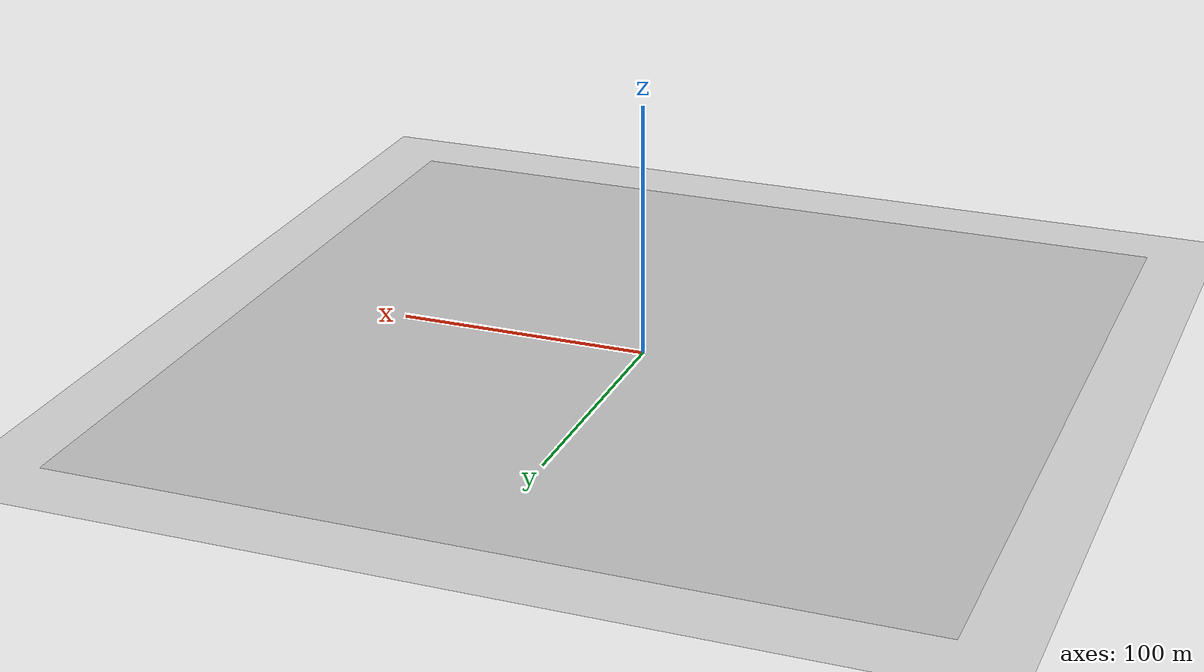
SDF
<?xml version="1.0" encoding="UTF-8"?>
<!-- ============================================================
     仿真世界描述文件 (SDF 1.9)
     场景：篮球场仿真环境
     ============================================================ -->
<sdf version="1.9">
  <world name="basketball_court">

    <!-- ========================================
         模块一：物理引擎配置
         控制仿真步长、实时性与更新频率。
         ======================================== -->
    <physics type="ode">
      <!-- 仿真步长 4ms，兼顾精度与性能 -->
      <max_step_size>0.004</max_step_size>
      <!-- 实时因子 1.0 表示仿真时间与真实时间同步 -->
      <real_time_factor>1.0</real_time_factor>
      <!-- 物理更新频率 250Hz（与步长互为倒数） -->
      <real_time_update_rate>250</real_time_update_rate>
    </physics>

    <!-- ========================================
         模块二：环境基础参数
         定义重力、地磁场及大气模型。
         ======================================== -->
    <!-- 重力加速度：Z 轴向下 9.8 m/s²（标准地球重力） -->
    <gravity>0 0 -9.8</gravity>
    <!-- 地磁场分量（单位：特斯拉），用于磁力计等传感器仿真 -->
    <magnetic_field>6e-06 2.3e-05 -4.2e-05</magnetic_field>
    <!-- 绝热大气模型，提供基础气压与密度环境 -->
    <atmosphere type="adiabatic"/>

    <!-- ========================================
         模块三：场景渲染参数
         控制可视化界面的网格、光照与阴影效果。
         ======================================== -->
    <scene>
      <!-- 关闭世界坐标系网格线显示 -->
      <grid>true</grid>
      <!-- 全局环境光强度（RGBA），柔和的白色漫射光 -->
      <ambient>0.4 0.4 0.4 1</ambient>
      <!-- 视口背景色：浅灰色 -->
      <background>0.7 0.7 0.7 1</background>
      <!-- 启用阴影渲染，增强场景真实感 -->
      <shadows>true</shadows>
    </scene>

    <!-- ========================================
         模块四：默认地面平面
         提供仿真世界的碰撞基准面。
         ======================================== -->
    <model name="ground_plane">
      <!-- 静态模型：不受外力影响，始终保持固定 -->
      <static>true</static>
      <link name="link">
        <!-- 碰撞体：无限延伸的平面，作为物理交互的基准 -->
        <collision name="collision">
          <geometry>
            <plane>
              <normal>0 0 1</normal>
              <size>1 1</size>
            </plane>
          </geometry>
          <surface>
            <friction>
              <ode/>
            </friction>
            <bounce/>
            <contact/>
          </surface>
        </collision>
        <!-- 可视化体：500×500m 的地面渲染范围 -->
        <visual name="visual">
          <geometry>
            <plane>
              <normal>0 0 1</normal>
              <size>500 500</size>
            </plane>
          </geometry>
          <material>
            <ambient>0.8 0.8 0.8 1</ambient>
            <diffuse>0.8 0.8 0.8 1</diffuse>
            <specular>0.8 0.8 0.8 1</specular>
          </material>
        </visual>
        <!-- 链接位于世界原点 -->
        <pose>0 0 0 0 -0 0</pose>
        <!-- 惯性参数：静态模型可忽略，按默认值填充 -->
        <inertial>
          <pose>0 0 0 0 -0 0</pose>
          <mass>1</mass>
          <inertia>
            <ixx>1</ixx>
            <ixy>0</ixy>
            <ixz>0</ixz>
            <iyy>1</iyy>
            <iyz>0</iyz>
            <izz>1</izz>
          </inertia>
        </inertial>
        <enable_wind>false</enable_wind>
      </link>
      <pose>0 0 0 0 -0 0</pose>
      <self_collide>false</self_collide>
    </model>

    <!-- ========================================
         模块五：篮球场模型引入
         通过 URI 引用外部模型库中的篮球场资产。
         ======================================== -->
    <include>
      <name>basketball_court</name>
      <!-- 模型路径：指向本地模型数据库中的篮球场模型 -->
      <uri>model://basketball_court</uri>
      <!-- 放置于世界原点，无旋转 -->
      <pose>0 0 0 0 0 0</pose>
    </include>

    <!-- ========================================
         模块六：光照系统
         模拟太阳方向光，提供场景主光源。
         ======================================== -->
    <light name="sunUTC" type="directional">
      <!-- 光源位置：距地面 500m 高空 -->
      <pose>0 0 500 0 -0 0</pose>
      <cast_shadows>true</cast_shadows>
      <intensity>1</intensity>
      <!-- 光线方向：模拟近似北半球中纬度地区的日光角度 -->
      <direction>0.001 0.625 -0.78</direction>
      <!-- 漫反射与镜面反射颜色 -->
      <diffuse>0.904 0.904 0.904 1</diffuse>
      <specular>0.271 0.271 0.271 1</specular>
      <!-- 衰减参数：方向光通常设为常量衰减 -->
      <attenuation>
        <range>2000</range>
        <linear>0</linear>
        <constant>1</constant>
        <quadratic>0</quadratic>
      </attenuation>
      <!-- 聚光参数：方向光不启用，角度设为 0 -->
      <spot>
        <inner_angle>0</inner_angle>
        <outer_angle>0</outer_angle>
        <falloff>0</falloff>
      </spot>
    </light>

    <!-- ========================================
         模块七：球形坐标系锚定
         将仿真世界坐标系映射到地球 WGS84 椭球面，
         地理位置：厦门理工学院集美校区
         ======================================== -->
    <spherical_coordinates>
      <!-- 地球椭球模型：WGS-84 标准 -->
      <surface_model>EARTH_WGS84</surface_model>
      <!-- 世界坐标系朝向：ENU（东-北-天） -->
      <world_frame_orientation>ENU</world_frame_orientation>
      <!-- 厦门理工学院集美校区经纬度 -->
      <latitude_deg>24.623911</latitude_deg>
      <longitude_deg>118.087898</longitude_deg>
      <!-- 海拔高度（米），0 表示地面基准面 -->
      <elevation>0</elevation>
    </spherical_coordinates>

  </world>
</sdf>

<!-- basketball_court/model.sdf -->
<!-- XML声明：定义文档版本与编码格式 -->
<sdf version='1.9'>                        <!-- SDF根标签：指定SDF格式版本为1.11 -->
  <model name='basketball_court'>           <!-- 模型定义：创建名为"basketball_court"的模型 -->
    <pose>0 0 0 0 0 0</pose>                <!-- 模型位姿：设置初始位置(x,y,z)与姿态(roll,pitch,yaw) -->
    <self_collide>false</self_collide>      <!-- 自碰撞：禁用模型内部连杆间的碰撞检测 -->
    <static>true</static>                   <!-- 静态属性：设为静态模型（不受重力/外力影响） -->
    <link name="map">                       <!-- 连杆定义：创建名为"map"的连杆（模型的物理实体单元） -->
      <gravity>true</gravity>               <!-- 重力：启用重力对该连杆的作用 -->
      <self_collide>false</self_collide>    <!-- 连杆自碰撞：禁用该连杆自身的碰撞检测 -->
      <pose>0 0 0 0 0 0</pose>              <!-- 连杆位姿：设置连杆相对于模型的位姿 -->
      <visual name="visual">                <!-- 视觉元素：定义连杆的可视化外观 -->
        <pose>0 0 0 0 0 0</pose>            <!-- 视觉位姿：设置视觉元素相对于连杆的位姿 -->
        <geometry>                          <!-- 几何形状：定义视觉元素的几何属性 -->
          <mesh>                            <!-- 网格模型：使用外部网格文件作为视觉形状 -->
            <uri>model://basketball_court/meshes/basketball_court.dae</uri> <!-- 网格路径：指定.dae网格文件的资源路径 -->
          </mesh>
        </geometry>
      </visual>
      <collision name="collision">          <!-- 碰撞元素：定义连杆的物理碰撞属性 -->
        <pose>0 0 0 0 0 0 </pose>           <!-- 碰撞位姿：设置碰撞元素相对于连杆的位姿 -->
        <geometry>                          <!-- 几何形状：定义碰撞元素的几何属性 -->
          <mesh>                            <!-- 网格模型：使用外部网格文件作为碰撞形状 -->
            <uri>model://basketball_court/meshes/basketball_court.dae</uri> <!-- 网格路径：指定碰撞检测用的.dae网格文件 -->
          </mesh>
        </geometry>
      </collision>
    </link>
  </model>
</sdf>
